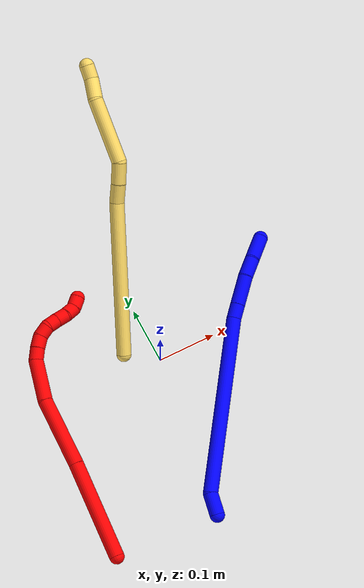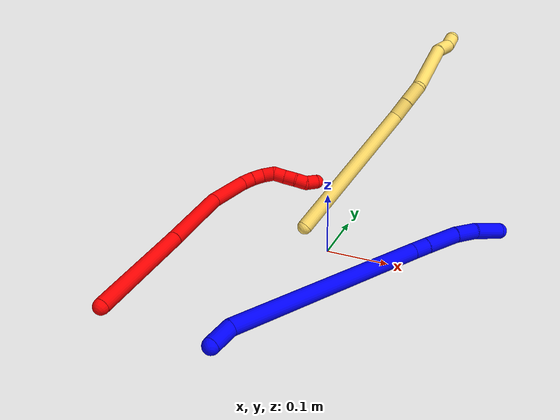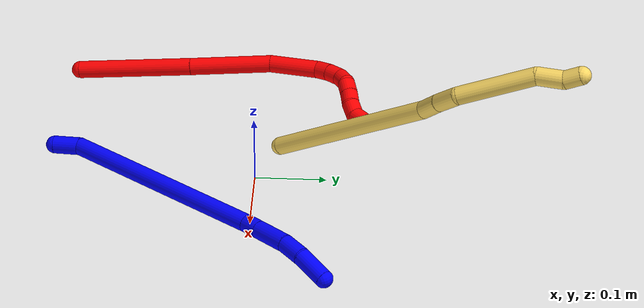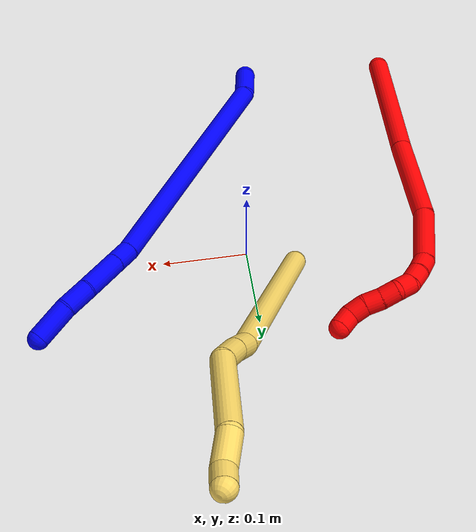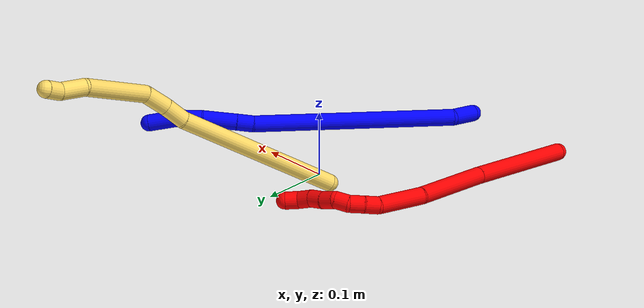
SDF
<sdf version="1.7">
 <world name="default">
  <model name="1">
   <static>0</static>
   <link name="1">
    <collision name="collision-cylinder-e_1_1_4">
     <pose>0.009409 0.008324 0.014141 -0.532038 0.520663 -0.144909</pose>
     <geometry><cylinder><radius>0.0125</radius><length>0.03783</length></cylinder></geometry>
     <surface>
      <friction><ode><mu>1.16</mu><mu2>1.16</mu2><slip1>0</slip1><slip2>0</slip2></ode></friction>
      <contact><ode><kp>1e+06</kp><kd>1</kd><max_vel>0</max_vel><min_depth>0.001</min_depth></ode></contact>
     </surface>
    </collision>
    <visual name="visual-cylinder-e_1_1_4">
     <pose>0.009409 0.008324 0.014141 -0.532038 0.520663 -0.144909</pose>
     <geometry><cylinder><radius>0.0125</radius><length>0.03783</length></cylinder></geometry>
     <material><ambient>0 0 1 1</ambient></material>
    </visual>
    <collision name="collision-cylinder-e_2_4_5">
     <pose>0.120725 0.112484 0.089419 -1.00294 0.730855 -0.413513</pose>
     <geometry><cylinder><radius>0.0125</radius><length>0.305333</length></cylinder></geometry>
     <surface>
      <friction><ode><mu>1.16</mu><mu2>1.16</mu2><slip1>0</slip1><slip2>0</slip2></ode></friction>
      <contact><ode><kp>1e+06</kp><kd>1</kd><max_vel>0</max_vel><min_depth>0.001</min_depth></ode></contact>
     </surface>
    </collision>
    <visual name="visual-cylinder-e_2_4_5">
     <pose>0.120725 0.112484 0.089419 -1.00294 0.730855 -0.413513</pose>
     <geometry><cylinder><radius>0.0125</radius><length>0.305333</length></cylinder></geometry>
     <material><ambient>0 0 1 1</ambient></material>
    </visual>
    <collision name="collision-cylinder-e_3_5_6">
     <pose>0.232304 0.215613 0.154128 -1.11548 0.872401 -0.565961</pose>
     <geometry><cylinder><radius>0.0125</radius><length>0.025261</length></cylinder></geometry>
     <surface>
      <friction><ode><mu>1.16</mu><mu2>1.16</mu2><slip1>0</slip1><slip2>0</slip2></ode></friction>
      <contact><ode><kp>1e+06</kp><kd>1</kd><max_vel>0</max_vel><min_depth>0.001</min_depth></ode></contact>
     </surface>
    </collision>
    <visual name="visual-cylinder-e_3_5_6">
     <pose>0.232304 0.215613 0.154128 -1.11548 0.872401 -0.565961</pose>
     <geometry><cylinder><radius>0.0125</radius><length>0.025261</length></cylinder></geometry>
     <material><ambient>0 0 1 1</ambient></material>
    </visual>
    <collision name="collision-cylinder-e_4_6_7">
     <pose>0.261457 0.238038 0.164852 -1.1292 0.861001 -0.566105</pose>
     <geometry><cylinder><radius>0.0125</radius><length>0.051365</length></cylinder></geometry>
     <surface>
      <friction><ode><mu>1.16</mu><mu2>1.16</mu2><slip1>0</slip1><slip2>0</slip2></ode></friction>
      <contact><ode><kp>1e+06</kp><kd>1</kd><max_vel>0</max_vel><min_depth>0.001</min_depth></ode></contact>
     </surface>
    </collision>
    <visual name="visual-cylinder-e_4_6_7">
     <pose>0.261457 0.238038 0.164852 -1.1292 0.861001 -0.566105</pose>
     <geometry><cylinder><radius>0.0125</radius><length>0.051365</length></cylinder></geometry>
     <material><ambient>0 0 1 1</ambient></material>
    </visual>
    <collision name="collision-cylinder-e_5_7_8">
     <pose>0.292833 0.265022 0.175202 -1.30732 0.769615 -0.601625</pose>
     <geometry><cylinder><radius>0.0125</radius><length>0.034188</length></cylinder></geometry>
     <surface>
      <friction><ode><mu>1.16</mu><mu2>1.16</mu2><slip1>0</slip1><slip2>0</slip2></ode></friction>
      <contact><ode><kp>1e+06</kp><kd>1</kd><max_vel>0</max_vel><min_depth>0.001</min_depth></ode></contact>
     </surface>
    </collision>
    <visual name="visual-cylinder-e_5_7_8">
     <pose>0.292833 0.265022 0.175202 -1.30732 0.769615 -0.601625</pose>
     <geometry><cylinder><radius>0.0125</radius><length>0.034188</length></cylinder></geometry>
     <material><ambient>0 0 1 1</ambient></material>
    </visual>
    <collision name="collision-cylinder-e_6_8_2">
     <pose>0.317266 0.295692 0.182671 -1.34757 0.576219 -0.464692</pose>
     <geometry><cylinder><radius>0.0125</radius><length>0.046022</length></cylinder></geometry>
     <surface>
      <friction><ode><mu>1.16</mu><mu2>1.16</mu2><slip1>0</slip1><slip2>0</slip2></ode></friction>
      <contact><ode><kp>1e+06</kp><kd>1</kd><max_vel>0</max_vel><min_depth>0.001</min_depth></ode></contact>
     </surface>
    </collision>
    <visual name="visual-cylinder-e_6_8_2">
     <pose>0.317266 0.295692 0.182671 -1.34757 0.576219 -0.464692</pose>
     <geometry><cylinder><radius>0.0125</radius><length>0.046022</length></cylinder></geometry>
     <material><ambient>0 0 1 1</ambient></material>
    </visual>
    <collision name="collision-sphere-2">
     <pose>0.329803 0.314509 0.186943 0 -0 0</pose>
     <geometry><sphere><radius>0.0125</radius></sphere></geometry>
     <surface>
      <friction><ode><mu>1.16</mu><mu2>1.16</mu2><slip1>0</slip1><slip2>0</slip2></ode></friction>
      <contact><ode><kp>1e+06</kp><kd>1</kd><max_vel>0</max_vel><min_depth>0.001</min_depth></ode></contact>
     </surface>
    </collision>
    <visual name="visual-sphere-2">
     <pose>0.329803 0.314509 0.186943 0 -0 0</pose>
     <geometry><sphere><radius>0.0125</radius></sphere></geometry>
     <material><ambient>0 0 1 1</ambient></material>
    </visual>
    <collision name="collision-sphere-4">
     <pose>0.018819 0.016648 0.028281 0 -0 0</pose>
     <geometry><sphere><radius>0.0125</radius></sphere></geometry>
     <surface>
      <friction><ode><mu>1.16</mu><mu2>1.16</mu2><slip1>0</slip1><slip2>0</slip2></ode></friction>
      <contact><ode><kp>1e+06</kp><kd>1</kd><max_vel>0</max_vel><min_depth>0.001</min_depth></ode></contact>
     </surface>
    </collision>
    <visual name="visual-sphere-4">
     <pose>0.018819 0.016648 0.028281 0 -0 0</pose>
     <geometry><sphere><radius>0.0125</radius></sphere></geometry>
     <material><ambient>0 0 1 1</ambient></material>
    </visual>
    <collision name="collision-sphere-1">
     <geometry><sphere><radius>0.0125</radius></sphere></geometry>
     <surface>
      <friction><ode><mu>1.16</mu><mu2>1.16</mu2><slip1>0</slip1><slip2>0</slip2></ode></friction>
      <contact><ode><kp>1e+06</kp><kd>1</kd><max_vel>0</max_vel><min_depth>0.001</min_depth></ode></contact>
     </surface>
    </collision>
    <visual name="visual-sphere-1">
     <geometry><sphere><radius>0.0125</radius></sphere></geometry>
     <material><ambient>0 0 1 1</ambient></material>
    </visual>
    <collision name="collision-sphere-8">
     <pose>0.304728 0.276875 0.1784 0 -0 0</pose>
     <geometry><sphere><radius>0.0125</radius></sphere></geometry>
     <surface>
      <friction><ode><mu>1.16</mu><mu2>1.16</mu2><slip1>0</slip1><slip2>0</slip2></ode></friction>
      <contact><ode><kp>1e+06</kp><kd>1</kd><max_vel>0</max_vel><min_depth>0.001</min_depth></ode></contact>
     </surface>
    </collision>
    <visual name="visual-sphere-8">
     <pose>0.304728 0.276875 0.1784 0 -0 0</pose>
     <geometry><sphere><radius>0.0125</radius></sphere></geometry>
     <material><ambient>0 0 1 1</ambient></material>
    </visual>
    <collision name="collision-sphere-5">
     <pose>0.22263 0.208319 0.150556 0 -0 0</pose>
     <geometry><sphere><radius>0.0125</radius></sphere></geometry>
     <surface>
      <friction><ode><mu>1.16</mu><mu2>1.16</mu2><slip1>0</slip1><slip2>0</slip2></ode></friction>
      <contact><ode><kp>1e+06</kp><kd>1</kd><max_vel>0</max_vel><min_depth>0.001</min_depth></ode></contact>
     </surface>
    </collision>
    <visual name="visual-sphere-5">
     <pose>0.22263 0.208319 0.150556 0 -0 0</pose>
     <geometry><sphere><radius>0.0125</radius></sphere></geometry>
     <material><ambient>0 0 1 1</ambient></material>
    </visual>
    <collision name="collision-sphere-6">
     <pose>0.241978 0.222907 0.157699 0 -0 0</pose>
     <geometry><sphere><radius>0.0125</radius></sphere></geometry>
     <surface>
      <friction><ode><mu>1.16</mu><mu2>1.16</mu2><slip1>0</slip1><slip2>0</slip2></ode></friction>
      <contact><ode><kp>1e+06</kp><kd>1</kd><max_vel>0</max_vel><min_depth>0.001</min_depth></ode></contact>
     </surface>
    </collision>
    <visual name="visual-sphere-6">
     <pose>0.241978 0.222907 0.157699 0 -0 0</pose>
     <geometry><sphere><radius>0.0125</radius></sphere></geometry>
     <material><ambient>0 0 1 1</ambient></material>
    </visual>
    <collision name="collision-sphere-7">
     <pose>0.280937 0.253169 0.172005 0 -0 0</pose>
     <geometry><sphere><radius>0.0125</radius></sphere></geometry>
     <surface>
      <friction><ode><mu>1.16</mu><mu2>1.16</mu2><slip1>0</slip1><slip2>0</slip2></ode></friction>
      <contact><ode><kp>1e+06</kp><kd>1</kd><max_vel>0</max_vel><min_depth>0.001</min_depth></ode></contact>
     </surface>
    </collision>
    <visual name="visual-sphere-7">
     <pose>0.280937 0.253169 0.172005 0 -0 0</pose>
     <geometry><sphere><radius>0.0125</radius></sphere></geometry>
     <material><ambient>0 0 1 1</ambient></material>
    </visual>
    <inertial>
     <pose>0.162256 0.150005 0.109191 0 -0 0</pose>
     <mass>0.5</mass>
     <inertia>
      <ixx>0.00095</ixx>
      <ixy>0</ixy>
      <ixz>0</ixz>
      <iyy>0.001036</iyy>
      <iyz>0</iyz>
      <izz>-0.00312</izz>
     </inertia>
    </inertial>
   </link>
   <pose>-0.043152 -0.287633 0.013548 -1.45466 -0.770931 0.467163</pose>
  </model>
  <model name="2">
   <static>0</static>
   <link name="2">
    <collision name="collision-cylinder-e_1_1_4">
     <pose>0.007482 -0.00672 -0.082934 3.06074 0.089686 1.67441</pose>
     <geometry><cylinder><radius>0.0125</radius><length>0.167083</length></cylinder></geometry>
     <surface>
      <friction><ode><mu>1.16</mu><mu2>1.16</mu2><slip1>0</slip1><slip2>0</slip2></ode></friction>
      <contact><ode><kp>1e+06</kp><kd>1</kd><max_vel>0</max_vel><min_depth>0.001</min_depth></ode></contact>
     </surface>
    </collision>
    <visual name="visual-cylinder-e_1_1_4">
     <pose>0.007482 -0.00672 -0.082934 3.06074 0.089686 1.67441</pose>
     <geometry><cylinder><radius>0.0125</radius><length>0.167083</length></cylinder></geometry>
     <material><ambient>1 0 0 1</ambient></material>
    </visual>
    <collision name="collision-cylinder-e_2_4_5">
     <pose>0.018629 -0.020256 -0.224763 3.02637 0.061717 0.982854</pose>
     <geometry><cylinder><radius>0.0125</radius><length>0.118803</length></cylinder></geometry>
     <surface>
      <friction><ode><mu>1.16</mu><mu2>1.16</mu2><slip1>0</slip1><slip2>0</slip2></ode></friction>
      <contact><ode><kp>1e+06</kp><kd>1</kd><max_vel>0</max_vel><min_depth>0.001</min_depth></ode></contact>
     </surface>
    </collision>
    <visual name="visual-cylinder-e_2_4_5">
     <pose>0.018629 -0.020256 -0.224763 3.02637 0.061717 0.982854</pose>
     <geometry><cylinder><radius>0.0125</radius><length>0.118803</length></cylinder></geometry>
     <material><ambient>1 0 0 1</ambient></material>
    </visual>
    <collision name="collision-cylinder-e_3_5_6">
     <pose>0.032055 -0.028307 -0.318168 3.10585 0.275527 2.88517</pose>
     <geometry><cylinder><radius>0.0125</radius><length>0.07177</length></cylinder></geometry>
     <surface>
      <friction><ode><mu>1.16</mu><mu2>1.16</mu2><slip1>0</slip1><slip2>0</slip2></ode></friction>
      <contact><ode><kp>1e+06</kp><kd>1</kd><max_vel>0</max_vel><min_depth>0.001</min_depth></ode></contact>
     </surface>
    </collision>
    <visual name="visual-cylinder-e_3_5_6">
     <pose>0.032055 -0.028307 -0.318168 3.10585 0.275527 2.88517</pose>
     <geometry><cylinder><radius>0.0125</radius><length>0.07177</length></cylinder></geometry>
     <material><ambient>1 0 0 1</ambient></material>
    </visual>
    <collision name="collision-cylinder-e_4_6_7">
     <pose>0.04684 -0.027119 -0.361544 -2.87496 0.500113 -2.17455</pose>
     <geometry><cylinder><radius>0.0125</radius><length>0.020948</length></cylinder></geometry>
     <surface>
      <friction><ode><mu>1.16</mu><mu2>1.16</mu2><slip1>0</slip1><slip2>0</slip2></ode></friction>
      <contact><ode><kp>1e+06</kp><kd>1</kd><max_vel>0</max_vel><min_depth>0.001</min_depth></ode></contact>
     </surface>
    </collision>
    <visual name="visual-cylinder-e_4_6_7">
     <pose>0.04684 -0.027119 -0.361544 -2.87496 0.500113 -2.17455</pose>
     <geometry><cylinder><radius>0.0125</radius><length>0.020948</length></cylinder></geometry>
     <material><ambient>1 0 0 1</ambient></material>
    </visual>
    <collision name="collision-cylinder-e_5_7_8">
     <pose>0.05815 -0.022311 -0.378638 -2.85927 0.633084 -2.32292</pose>
     <geometry><cylinder><radius>0.0125</radius><length>0.021252</length></cylinder></geometry>
     <surface>
      <friction><ode><mu>1.16</mu><mu2>1.16</mu2><slip1>0</slip1><slip2>0</slip2></ode></friction>
      <contact><ode><kp>1e+06</kp><kd>1</kd><max_vel>0</max_vel><min_depth>0.001</min_depth></ode></contact>
     </surface>
    </collision>
    <visual name="visual-cylinder-e_5_7_8">
     <pose>0.05815 -0.022311 -0.378638 -2.85927 0.633084 -2.32292</pose>
     <geometry><cylinder><radius>0.0125</radius><length>0.021252</length></cylinder></geometry>
     <material><ambient>1 0 0 1</ambient></material>
    </visual>
    <collision name="collision-cylinder-e_6_8_9">
     <pose>0.072026 -0.015521 -0.391789 -2.41189 0.854708 -1.74583</pose>
     <geometry><cylinder><radius>0.0125</radius><length>0.020121</length></cylinder></geometry>
     <surface>
      <friction><ode><mu>1.16</mu><mu2>1.16</mu2><slip1>0</slip1><slip2>0</slip2></ode></friction>
      <contact><ode><kp>1e+06</kp><kd>1</kd><max_vel>0</max_vel><min_depth>0.001</min_depth></ode></contact>
     </surface>
    </collision>
    <visual name="visual-cylinder-e_6_8_9">
     <pose>0.072026 -0.015521 -0.391789 -2.41189 0.854708 -1.74583</pose>
     <geometry><cylinder><radius>0.0125</radius><length>0.020121</length></cylinder></geometry>
     <material><ambient>1 0 0 1</ambient></material>
    </visual>
    <collision name="collision-cylinder-e_7_9_10">
     <pose>0.089345 -0.009811 -0.39867 -2.55306 1.33335 -2.40629</pose>
     <geometry><cylinder><radius>0.0125</radius><length>0.02002</length></cylinder></geometry>
     <surface>
      <friction><ode><mu>1.16</mu><mu2>1.16</mu2><slip1>0</slip1><slip2>0</slip2></ode></friction>
      <contact><ode><kp>1e+06</kp><kd>1</kd><max_vel>0</max_vel><min_depth>0.001</min_depth></ode></contact>
     </surface>
    </collision>
    <visual name="visual-cylinder-e_7_9_10">
     <pose>0.089345 -0.009811 -0.39867 -2.55306 1.33335 -2.40629</pose>
     <geometry><cylinder><radius>0.0125</radius><length>0.02002</length></cylinder></geometry>
     <material><ambient>1 0 0 1</ambient></material>
    </visual>
    <collision name="collision-cylinder-e_8_10_11">
     <pose>0.108653 -0.005938 -0.40192 -2.03722 1.27939 -1.75838</pose>
     <geometry><cylinder><radius>0.0125</radius><length>0.020001</length></cylinder></geometry>
     <surface>
      <friction><ode><mu>1.16</mu><mu2>1.16</mu2><slip1>0</slip1><slip2>0</slip2></ode></friction>
      <contact><ode><kp>1e+06</kp><kd>1</kd><max_vel>0</max_vel><min_depth>0.001</min_depth></ode></contact>
     </surface>
    </collision>
    <visual name="visual-cylinder-e_8_10_11">
     <pose>0.108653 -0.005938 -0.40192 -2.03722 1.27939 -1.75838</pose>
     <geometry><cylinder><radius>0.0125</radius><length>0.020001</length></cylinder></geometry>
     <material><ambient>1 0 0 1</ambient></material>
    </visual>
    <collision name="collision-cylinder-e_9_11_12">
     <pose>0.127828 -0.002774 -0.405963 -2.92738 1.28548 -2.85637</pose>
     <geometry><cylinder><radius>0.0125</radius><length>0.020001</length></cylinder></geometry>
     <surface>
      <friction><ode><mu>1.16</mu><mu2>1.16</mu2><slip1>0</slip1><slip2>0</slip2></ode></friction>
      <contact><ode><kp>1e+06</kp><kd>1</kd><max_vel>0</max_vel><min_depth>0.001</min_depth></ode></contact>
     </surface>
    </collision>
    <visual name="visual-cylinder-e_9_11_12">
     <pose>0.127828 -0.002774 -0.405963 -2.92738 1.28548 -2.85637</pose>
     <geometry><cylinder><radius>0.0125</radius><length>0.020001</length></cylinder></geometry>
     <material><ambient>1 0 0 1</ambient></material>
    </visual>
    <collision name="collision-cylinder-e_10_12_2">
     <pose>0.144542 -0.000867 -0.415614 -2.95422 0.792017 -2.69945</pose>
     <geometry><cylinder><radius>0.0125</radius><length>0.02</length></cylinder></geometry>
     <surface>
      <friction><ode><mu>1.16</mu><mu2>1.16</mu2><slip1>0</slip1><slip2>0</slip2></ode></friction>
      <contact><ode><kp>1e+06</kp><kd>1</kd><max_vel>0</max_vel><min_depth>0.001</min_depth></ode></contact>
     </surface>
    </collision>
    <visual name="visual-cylinder-e_10_12_2">
     <pose>0.144542 -0.000867 -0.415614 -2.95422 0.792017 -2.69945</pose>
     <geometry><cylinder><radius>0.0125</radius><length>0.02</length></cylinder></geometry>
     <material><ambient>1 0 0 1</ambient></material>
    </visual>
    <collision name="collision-sphere-2">
     <pose>0.151659 0.000442 -0.422515 0 -0 0</pose>
     <geometry><sphere><radius>0.0125</radius></sphere></geometry>
     <surface>
      <friction><ode><mu>1.16</mu><mu2>1.16</mu2><slip1>0</slip1><slip2>0</slip2></ode></friction>
      <contact><ode><kp>1e+06</kp><kd>1</kd><max_vel>0</max_vel><min_depth>0.001</min_depth></ode></contact>
     </surface>
    </collision>
    <visual name="visual-sphere-2">
     <pose>0.151659 0.000442 -0.422515 0 -0 0</pose>
     <geometry><sphere><radius>0.0125</radius></sphere></geometry>
     <material><ambient>1 0 0 1</ambient></material>
    </visual>
    <collision name="collision-sphere-12">
     <pose>0.137424 -0.002175 -0.408713 0 -0 0</pose>
     <geometry><sphere><radius>0.0125</radius></sphere></geometry>
     <surface>
      <friction><ode><mu>1.16</mu><mu2>1.16</mu2><slip1>0</slip1><slip2>0</slip2></ode></friction>
      <contact><ode><kp>1e+06</kp><kd>1</kd><max_vel>0</max_vel><min_depth>0.001</min_depth></ode></contact>
     </surface>
    </collision>
    <visual name="visual-sphere-12">
     <pose>0.137424 -0.002175 -0.408713 0 -0 0</pose>
     <geometry><sphere><radius>0.0125</radius></sphere></geometry>
     <material><ambient>1 0 0 1</ambient></material>
    </visual>
    <collision name="collision-sphere-11">
     <pose>0.118232 -0.003372 -0.403212 0 -0 0</pose>
     <geometry><sphere><radius>0.0125</radius></sphere></geometry>
     <surface>
      <friction><ode><mu>1.16</mu><mu2>1.16</mu2><slip1>0</slip1><slip2>0</slip2></ode></friction>
      <contact><ode><kp>1e+06</kp><kd>1</kd><max_vel>0</max_vel><min_depth>0.001</min_depth></ode></contact>
     </surface>
    </collision>
    <visual name="visual-sphere-11">
     <pose>0.118232 -0.003372 -0.403212 0 -0 0</pose>
     <geometry><sphere><radius>0.0125</radius></sphere></geometry>
     <material><ambient>1 0 0 1</ambient></material>
    </visual>
    <collision name="collision-sphere-10">
     <pose>0.099074 -0.008504 -0.400628 0 -0 0</pose>
     <geometry><sphere><radius>0.0125</radius></sphere></geometry>
     <surface>
      <friction><ode><mu>1.16</mu><mu2>1.16</mu2><slip1>0</slip1><slip2>0</slip2></ode></friction>
      <contact><ode><kp>1e+06</kp><kd>1</kd><max_vel>0</max_vel><min_depth>0.001</min_depth></ode></contact>
     </surface>
    </collision>
    <visual name="visual-sphere-10">
     <pose>0.099074 -0.008504 -0.400628 0 -0 0</pose>
     <geometry><sphere><radius>0.0125</radius></sphere></geometry>
     <material><ambient>1 0 0 1</ambient></material>
    </visual>
    <collision name="collision-sphere-9">
     <pose>0.079616 -0.011119 -0.396711 0 -0 0</pose>
     <geometry><sphere><radius>0.0125</radius></sphere></geometry>
     <surface>
      <friction><ode><mu>1.16</mu><mu2>1.16</mu2><slip1>0</slip1><slip2>0</slip2></ode></friction>
      <contact><ode><kp>1e+06</kp><kd>1</kd><max_vel>0</max_vel><min_depth>0.001</min_depth></ode></contact>
     </surface>
    </collision>
    <visual name="visual-sphere-9">
     <pose>0.079616 -0.011119 -0.396711 0 -0 0</pose>
     <geometry><sphere><radius>0.0125</radius></sphere></geometry>
     <material><ambient>1 0 0 1</ambient></material>
    </visual>
    <collision name="collision-sphere-4">
     <pose>0.014965 -0.01344 -0.165868 0 -0 0</pose>
     <geometry><sphere><radius>0.0125</radius></sphere></geometry>
     <surface>
      <friction><ode><mu>1.16</mu><mu2>1.16</mu2><slip1>0</slip1><slip2>0</slip2></ode></friction>
      <contact><ode><kp>1e+06</kp><kd>1</kd><max_vel>0</max_vel><min_depth>0.001</min_depth></ode></contact>
     </surface>
    </collision>
    <visual name="visual-sphere-4">
     <pose>0.014965 -0.01344 -0.165868 0 -0 0</pose>
     <geometry><sphere><radius>0.0125</radius></sphere></geometry>
     <material><ambient>1 0 0 1</ambient></material>
    </visual>
    <collision name="collision-sphere-1">
     <geometry><sphere><radius>0.0125</radius></sphere></geometry>
     <surface>
      <friction><ode><mu>1.16</mu><mu2>1.16</mu2><slip1>0</slip1><slip2>0</slip2></ode></friction>
      <contact><ode><kp>1e+06</kp><kd>1</kd><max_vel>0</max_vel><min_depth>0.001</min_depth></ode></contact>
     </surface>
    </collision>
    <visual name="visual-sphere-1">
     <geometry><sphere><radius>0.0125</radius></sphere></geometry>
     <material><ambient>1 0 0 1</ambient></material>
    </visual>
    <collision name="collision-sphere-8">
     <pose>0.064437 -0.019924 -0.386866 0 -0 0</pose>
     <geometry><sphere><radius>0.0125</radius></sphere></geometry>
     <surface>
      <friction><ode><mu>1.16</mu><mu2>1.16</mu2><slip1>0</slip1><slip2>0</slip2></ode></friction>
      <contact><ode><kp>1e+06</kp><kd>1</kd><max_vel>0</max_vel><min_depth>0.001</min_depth></ode></contact>
     </surface>
    </collision>
    <visual name="visual-sphere-8">
     <pose>0.064437 -0.019924 -0.386866 0 -0 0</pose>
     <geometry><sphere><radius>0.0125</radius></sphere></geometry>
     <material><ambient>1 0 0 1</ambient></material>
    </visual>
    <collision name="collision-sphere-5">
     <pose>0.022293 -0.027073 -0.283659 0 -0 0</pose>
     <geometry><sphere><radius>0.0125</radius></sphere></geometry>
     <surface>
      <friction><ode><mu>1.16</mu><mu2>1.16</mu2><slip1>0</slip1><slip2>0</slip2></ode></friction>
      <contact><ode><kp>1e+06</kp><kd>1</kd><max_vel>0</max_vel><min_depth>0.001</min_depth></ode></contact>
     </surface>
    </collision>
    <visual name="visual-sphere-5">
     <pose>0.022293 -0.027073 -0.283659 0 -0 0</pose>
     <geometry><sphere><radius>0.0125</radius></sphere></geometry>
     <material><ambient>1 0 0 1</ambient></material>
    </visual>
    <collision name="collision-sphere-6">
     <pose>0.041818 -0.029541 -0.352678 0 -0 0</pose>
     <geometry><sphere><radius>0.0125</radius></sphere></geometry>
     <surface>
      <friction><ode><mu>1.16</mu><mu2>1.16</mu2><slip1>0</slip1><slip2>0</slip2></ode></friction>
      <contact><ode><kp>1e+06</kp><kd>1</kd><max_vel>0</max_vel><min_depth>0.001</min_depth></ode></contact>
     </surface>
    </collision>
    <visual name="visual-sphere-6">
     <pose>0.041818 -0.029541 -0.352678 0 -0 0</pose>
     <geometry><sphere><radius>0.0125</radius></sphere></geometry>
     <material><ambient>1 0 0 1</ambient></material>
    </visual>
    <collision name="collision-sphere-7">
     <pose>0.051863 -0.024697 -0.370411 0 -0 0</pose>
     <geometry><sphere><radius>0.0125</radius></sphere></geometry>
     <surface>
      <friction><ode><mu>1.16</mu><mu2>1.16</mu2><slip1>0</slip1><slip2>0</slip2></ode></friction>
      <contact><ode><kp>1e+06</kp><kd>1</kd><max_vel>0</max_vel><min_depth>0.001</min_depth></ode></contact>
     </surface>
    </collision>
    <visual name="visual-sphere-7">
     <pose>0.051863 -0.024697 -0.370411 0 -0 0</pose>
     <geometry><sphere><radius>0.0125</radius></sphere></geometry>
     <material><ambient>1 0 0 1</ambient></material>
    </visual>
    <inertial>
     <pose>0.037679 -0.014607 -0.238701 0 -0 0</pose>
     <mass>0.5</mass>
     <inertia>
      <ixx>0.000532</ixx>
      <ixy>0</ixy>
      <ixz>0</ixz>
      <iyy>0.000522</iyy>
      <iyz>0</iyz>
      <izz>-4.7e-05</izz>
     </inertia>
    </inertial>
   </link>
   <pose>-0.221554 -0.27511 0.0163 1.82307 0.462363 0.100735</pose>
  </model>
  <model name="5">
   <static>0</static>
   <link name="5">
    <collision name="collision-cylinder-e_1_1_4">
     <pose>0.044613 -0.000202 0.121832 0.001656 0.351021 0.000294</pose>
     <geometry><cylinder><radius>0.0125</radius><length>0.259488</length></cylinder></geometry>
     <surface>
      <friction><ode><mu>1.16</mu><mu2>1.16</mu2><slip1>0</slip1><slip2>0</slip2></ode></friction>
      <contact><ode><kp>1e+06</kp><kd>1</kd><max_vel>0</max_vel><min_depth>0.001</min_depth></ode></contact>
     </surface>
    </collision>
    <visual name="visual-cylinder-e_1_1_4">
     <pose>0.044613 -0.000202 0.121832 0.001656 0.351021 0.000294</pose>
     <geometry><cylinder><radius>0.0125</radius><length>0.259488</length></cylinder></geometry>
     <material><ambient>1 0.858824 0.4 1</ambient></material>
    </visual>
    <collision name="collision-cylinder-e_2_4_5">
     <pose>0.096821 0.002672 0.258045 -0.210709 0.476689 -0.051373</pose>
     <geometry><cylinder><radius>0.0125</radius><length>0.033102</length></cylinder></geometry>
     <surface>
      <friction><ode><mu>1.16</mu><mu2>1.16</mu2><slip1>0</slip1><slip2>0</slip2></ode></friction>
      <contact><ode><kp>1e+06</kp><kd>1</kd><max_vel>0</max_vel><min_depth>0.001</min_depth></ode></contact>
     </surface>
    </collision>
    <visual name="visual-cylinder-e_2_4_5">
     <pose>0.096821 0.002672 0.258045 -0.210709 0.476689 -0.051373</pose>
     <geometry><cylinder><radius>0.0125</radius><length>0.033102</length></cylinder></geometry>
     <material><ambient>1 0.858824 0.4 1</ambient></material>
    </visual>
    <collision name="collision-cylinder-e_3_5_6">
     <pose>0.112041 0.007908 0.288811 -0.131077 0.432312 -0.028822</pose>
     <geometry><cylinder><radius>0.0125</radius><length>0.036404</length></cylinder></geometry>
     <surface>
      <friction><ode><mu>1.16</mu><mu2>1.16</mu2><slip1>0</slip1><slip2>0</slip2></ode></friction>
      <contact><ode><kp>1e+06</kp><kd>1</kd><max_vel>0</max_vel><min_depth>0.001</min_depth></ode></contact>
     </surface>
    </collision>
    <visual name="visual-cylinder-e_3_5_6">
     <pose>0.112041 0.007908 0.288811 -0.131077 0.432312 -0.028822</pose>
     <geometry><cylinder><radius>0.0125</radius><length>0.036404</length></cylinder></geometry>
     <material><ambient>1 0.858824 0.4 1</ambient></material>
    </visual>
    <collision name="collision-cylinder-e_4_6_7">
     <pose>0.136457 -0.008891 0.353897 0.371249 0.31085 0.058831</pose>
     <geometry><cylinder><radius>0.0125</radius><length>0.109784</length></cylinder></geometry>
     <surface>
      <friction><ode><mu>1.16</mu><mu2>1.16</mu2><slip1>0</slip1><slip2>0</slip2></ode></friction>
      <contact><ode><kp>1e+06</kp><kd>1</kd><max_vel>0</max_vel><min_depth>0.001</min_depth></ode></contact>
     </surface>
    </collision>
    <visual name="visual-cylinder-e_4_6_7">
     <pose>0.136457 -0.008891 0.353897 0.371249 0.31085 0.058831</pose>
     <geometry><cylinder><radius>0.0125</radius><length>0.109784</length></cylinder></geometry>
     <material><ambient>1 0.858824 0.4 1</ambient></material>
    </visual>
    <collision name="collision-cylinder-e_5_7_8">
     <pose>0.15192 -0.033607 0.42023 0.315598 -0.071389 -0.011364</pose>
     <geometry><cylinder><radius>0.0125</radius><length>0.037191</length></cylinder></geometry>
     <surface>
      <friction><ode><mu>1.16</mu><mu2>1.16</mu2><slip1>0</slip1><slip2>0</slip2></ode></friction>
      <contact><ode><kp>1e+06</kp><kd>1</kd><max_vel>0</max_vel><min_depth>0.001</min_depth></ode></contact>
     </surface>
    </collision>
    <visual name="visual-cylinder-e_5_7_8">
     <pose>0.15192 -0.033607 0.42023 0.315598 -0.071389 -0.011364</pose>
     <geometry><cylinder><radius>0.0125</radius><length>0.037191</length></cylinder></geometry>
     <material><ambient>1 0.858824 0.4 1</ambient></material>
    </visual>
    <collision name="collision-cylinder-e_6_8_2">
     <pose>0.154485 -0.043011 0.44863 0.326538 0.329828 0.054819</pose>
     <geometry><cylinder><radius>0.0125</radius><length>0.024032</length></cylinder></geometry>
     <surface>
      <friction><ode><mu>1.16</mu><mu2>1.16</mu2><slip1>0</slip1><slip2>0</slip2></ode></friction>
      <contact><ode><kp>1e+06</kp><kd>1</kd><max_vel>0</max_vel><min_depth>0.001</min_depth></ode></contact>
     </surface>
    </collision>
    <visual name="visual-cylinder-e_6_8_2">
     <pose>0.154485 -0.043011 0.44863 0.326538 0.329828 0.054819</pose>
     <geometry><cylinder><radius>0.0125</radius><length>0.024032</length></cylinder></geometry>
     <material><ambient>1 0.858824 0.4 1</ambient></material>
    </visual>
    <collision name="collision-sphere-2">
     <pose>0.158377 -0.046658 0.459397 0 -0 0</pose>
     <geometry><sphere><radius>0.0125</radius></sphere></geometry>
     <surface>
      <friction><ode><mu>1.16</mu><mu2>1.16</mu2><slip1>0</slip1><slip2>0</slip2></ode></friction>
      <contact><ode><kp>1e+06</kp><kd>1</kd><max_vel>0</max_vel><min_depth>0.001</min_depth></ode></contact>
     </surface>
    </collision>
    <visual name="visual-sphere-2">
     <pose>0.158377 -0.046658 0.459397 0 -0 0</pose>
     <geometry><sphere><radius>0.0125</radius></sphere></geometry>
     <material><ambient>1 0.858824 0.4 1</ambient></material>
    </visual>
    <collision name="collision-sphere-4">
     <pose>0.089226 -0.000404 0.243664 0 -0 0</pose>
     <geometry><sphere><radius>0.0125</radius></sphere></geometry>
     <surface>
      <friction><ode><mu>1.16</mu><mu2>1.16</mu2><slip1>0</slip1><slip2>0</slip2></ode></friction>
      <contact><ode><kp>1e+06</kp><kd>1</kd><max_vel>0</max_vel><min_depth>0.001</min_depth></ode></contact>
     </surface>
    </collision>
    <visual name="visual-sphere-4">
     <pose>0.089226 -0.000404 0.243664 0 -0 0</pose>
     <geometry><sphere><radius>0.0125</radius></sphere></geometry>
     <material><ambient>1 0.858824 0.4 1</ambient></material>
    </visual>
    <collision name="collision-sphere-1">
     <geometry><sphere><radius>0.0125</radius></sphere></geometry>
     <surface>
      <friction><ode><mu>1.16</mu><mu2>1.16</mu2><slip1>0</slip1><slip2>0</slip2></ode></friction>
      <contact><ode><kp>1e+06</kp><kd>1</kd><max_vel>0</max_vel><min_depth>0.001</min_depth></ode></contact>
     </surface>
    </collision>
    <visual name="visual-sphere-1">
     <geometry><sphere><radius>0.0125</radius></sphere></geometry>
     <material><ambient>1 0.858824 0.4 1</ambient></material>
    </visual>
    <collision name="collision-sphere-8">
     <pose>0.150593 -0.039365 0.437862 0 -0 0</pose>
     <geometry><sphere><radius>0.0125</radius></sphere></geometry>
     <surface>
      <friction><ode><mu>1.16</mu><mu2>1.16</mu2><slip1>0</slip1><slip2>0</slip2></ode></friction>
      <contact><ode><kp>1e+06</kp><kd>1</kd><max_vel>0</max_vel><min_depth>0.001</min_depth></ode></contact>
     </surface>
    </collision>
    <visual name="visual-sphere-8">
     <pose>0.150593 -0.039365 0.437862 0 -0 0</pose>
     <geometry><sphere><radius>0.0125</radius></sphere></geometry>
     <material><ambient>1 0.858824 0.4 1</ambient></material>
    </visual>
    <collision name="collision-sphere-5">
     <pose>0.104415 0.005748 0.272425 0 -0 0</pose>
     <geometry><sphere><radius>0.0125</radius></sphere></geometry>
     <surface>
      <friction><ode><mu>1.16</mu><mu2>1.16</mu2><slip1>0</slip1><slip2>0</slip2></ode></friction>
      <contact><ode><kp>1e+06</kp><kd>1</kd><max_vel>0</max_vel><min_depth>0.001</min_depth></ode></contact>
     </surface>
    </collision>
    <visual name="visual-sphere-5">
     <pose>0.104415 0.005748 0.272425 0 -0 0</pose>
     <geometry><sphere><radius>0.0125</radius></sphere></geometry>
     <material><ambient>1 0.858824 0.4 1</ambient></material>
    </visual>
    <collision name="collision-sphere-6">
     <pose>0.119667 0.010068 0.305196 0 -0 0</pose>
     <geometry><sphere><radius>0.0125</radius></sphere></geometry>
     <surface>
      <friction><ode><mu>1.16</mu><mu2>1.16</mu2><slip1>0</slip1><slip2>0</slip2></ode></friction>
      <contact><ode><kp>1e+06</kp><kd>1</kd><max_vel>0</max_vel><min_depth>0.001</min_depth></ode></contact>
     </surface>
    </collision>
    <visual name="visual-sphere-6">
     <pose>0.119667 0.010068 0.305196 0 -0 0</pose>
     <geometry><sphere><radius>0.0125</radius></sphere></geometry>
     <material><ambient>1 0.858824 0.4 1</ambient></material>
    </visual>
    <collision name="collision-sphere-7">
     <pose>0.153246 -0.02785 0.402598 0 -0 0</pose>
     <geometry><sphere><radius>0.0125</radius></sphere></geometry>
     <surface>
      <friction><ode><mu>1.16</mu><mu2>1.16</mu2><slip1>0</slip1><slip2>0</slip2></ode></friction>
      <contact><ode><kp>1e+06</kp><kd>1</kd><max_vel>0</max_vel><min_depth>0.001</min_depth></ode></contact>
     </surface>
    </collision>
    <visual name="visual-sphere-7">
     <pose>0.153246 -0.02785 0.402598 0 -0 0</pose>
     <geometry><sphere><radius>0.0125</radius></sphere></geometry>
     <material><ambient>1 0.858824 0.4 1</ambient></material>
    </visual>
    <inertial>
     <pose>0.086407 -0.005871 0.231864 0 -0 0</pose>
     <mass>0.5</mass>
     <inertia>
      <ixx>0.001521</ixx>
      <ixy>0</ixy>
      <ixz>0</ixz>
      <iyy>0.001593</iyy>
      <iyz>0</iyz>
      <izz>-0.000465</izz>
     </inertia>
    </inertial>
   </link>
   <pose>-0.052568 0.032261 0.017389 0.916232 -1.17247 -3.08402</pose>
  </model>
 </world>
</sdf>
